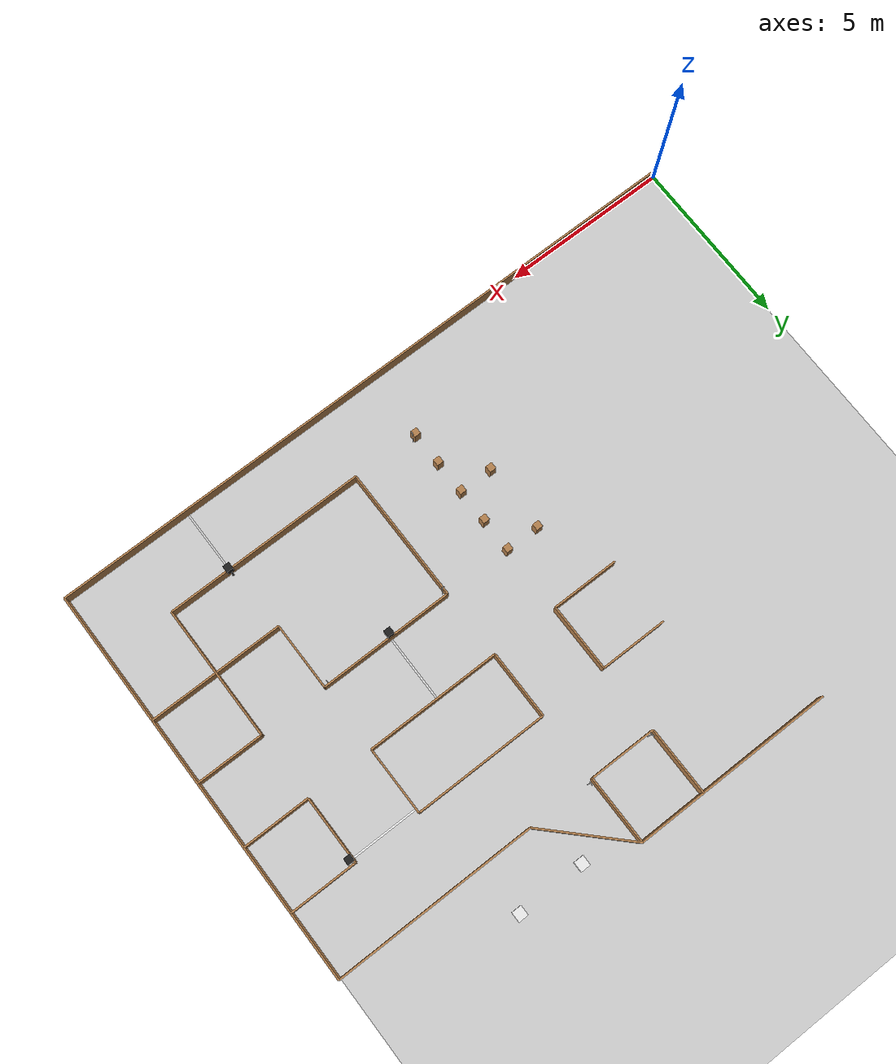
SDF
<sdf version="1.6">
 <world name="default">
  <include><uri>model://cube</uri><name>cube_1</name><pose>15.5 13.5 0 0 0 4.71238898038469</pose></include>
  <include><uri>model://cube</uri><name>cube_0</name><pose>13.5 13.5 0 0 0 4.71238898038469</pose></include>
  <model name="box_72">
   <pose>10.0 2.0 0.25 0 0 0</pose>
   <link name="link">
    <inertial>
     <mass>1</mass>
     <inertia><ixx>0</ixx><ixy>0</ixy><ixz>0</ixz><iyy>0</iyy><iyz>0</iyz><izz>0</izz></inertia>
    </inertial>
    <collision name="collision"><geometry><box><size>0.2 0.2 0.5</size></box></geometry></collision>
    <visual name="visual">
     <geometry><box><size>0.2 0.2 0.5</size></box></geometry>
     <material>
      <script><name>Gazebo/WoodPallet</name><uri>file://media/materials/scripts/gazebo.material</uri></script>
     </material>
    </visual>
   </link>
   <static>1</static>
  </model>
  <model name="box_69">
   <pose>10.0 3.0 0.25 0 0 0</pose>
   <link name="link">
    <inertial>
     <mass>1</mass>
     <inertia><ixx>0</ixx><ixy>0</ixy><ixz>0</ixz><iyy>0</iyy><iyz>0</iyz><izz>0</izz></inertia>
    </inertial>
    <collision name="collision"><geometry><box><size>0.2 0.2 0.5</size></box></geometry></collision>
    <visual name="visual">
     <geometry><box><size>0.2 0.2 0.5</size></box></geometry>
     <material>
      <script><name>Gazebo/WoodPallet</name><uri>file://media/materials/scripts/gazebo.material</uri></script>
     </material>
    </visual>
   </link>
   <static>1</static>
  </model>
  <model name="box_67">
   <pose>10.0 4.0 0.25 0 0 0</pose>
   <link name="link">
    <inertial>
     <mass>1</mass>
     <inertia><ixx>0</ixx><ixy>0</ixy><ixz>0</ixz><iyy>0</iyy><iyz>0</iyz><izz>0</izz></inertia>
    </inertial>
    <collision name="collision"><geometry><box><size>0.2 0.2 0.5</size></box></geometry></collision>
    <visual name="visual">
     <geometry><box><size>0.2 0.2 0.5</size></box></geometry>
     <material>
      <script><name>Gazebo/WoodPallet</name><uri>file://media/materials/scripts/gazebo.material</uri></script>
     </material>
    </visual>
   </link>
   <static>1</static>
  </model>
  <model name="box_66">
   <pose>9.0 4.0 0.25 0 0 0</pose>
   <link name="link">
    <inertial>
     <mass>1</mass>
     <inertia><ixx>0</ixx><ixy>0</ixy><ixz>0</ixz><iyy>0</iyy><iyz>0</iyz><izz>0</izz></inertia>
    </inertial>
    <collision name="collision"><geometry><box><size>0.2 0.2 0.5</size></box></geometry></collision>
    <visual name="visual">
     <geometry><box><size>0.2 0.2 0.5</size></box></geometry>
     <material>
      <script><name>Gazebo/WoodPallet</name><uri>file://media/materials/scripts/gazebo.material</uri></script>
     </material>
    </visual>
   </link>
   <static>1</static>
  </model>
  <model name="box_64">
   <pose>10.0 4.0 0.25 0 0 0</pose>
   <link name="link">
    <inertial>
     <mass>1</mass>
     <inertia><ixx>0</ixx><ixy>0</ixy><ixz>0</ixz><iyy>0</iyy><iyz>0</iyz><izz>0</izz></inertia>
    </inertial>
    <collision name="collision"><geometry><box><size>0.2 0.2 0.5</size></box></geometry></collision>
    <visual name="visual">
     <geometry><box><size>0.2 0.2 0.5</size></box></geometry>
     <material>
      <script><name>Gazebo/WoodPallet</name><uri>file://media/materials/scripts/gazebo.material</uri></script>
     </material>
    </visual>
   </link>
   <static>1</static>
  </model>
  <model name="box_63">
   <pose>9.0 4.0 0.25 0 0 0</pose>
   <link name="link">
    <inertial>
     <mass>1</mass>
     <inertia><ixx>0</ixx><ixy>0</ixy><ixz>0</ixz><iyy>0</iyy><iyz>0</iyz><izz>0</izz></inertia>
    </inertial>
    <collision name="collision"><geometry><box><size>0.2 0.2 0.5</size></box></geometry></collision>
    <visual name="visual">
     <geometry><box><size>0.2 0.2 0.5</size></box></geometry>
     <material>
      <script><name>Gazebo/WoodPallet</name><uri>file://media/materials/scripts/gazebo.material</uri></script>
     </material>
    </visual>
   </link>
   <static>1</static>
  </model>
  <model name="box_61">
   <pose>10.0 5.0 0.25 0 0 0</pose>
   <link name="link">
    <inertial>
     <mass>1</mass>
     <inertia><ixx>0</ixx><ixy>0</ixy><ixz>0</ixz><iyy>0</iyy><iyz>0</iyz><izz>0</izz></inertia>
    </inertial>
    <collision name="collision"><geometry><box><size>0.2 0.2 0.5</size></box></geometry></collision>
    <visual name="visual">
     <geometry><box><size>0.2 0.2 0.5</size></box></geometry>
     <material>
      <script><name>Gazebo/WoodPallet</name><uri>file://media/materials/scripts/gazebo.material</uri></script>
     </material>
    </visual>
   </link>
   <static>1</static>
  </model>
  <model name="box_59">
   <pose>10.0 6.0 0.25 0 0 0</pose>
   <link name="link">
    <inertial>
     <mass>1</mass>
     <inertia><ixx>0</ixx><ixy>0</ixy><ixz>0</ixz><iyy>0</iyy><iyz>0</iyz><izz>0</izz></inertia>
    </inertial>
    <collision name="collision"><geometry><box><size>0.2 0.2 0.5</size></box></geometry></collision>
    <visual name="visual">
     <geometry><box><size>0.2 0.2 0.5</size></box></geometry>
     <material>
      <script><name>Gazebo/WoodPallet</name><uri>file://media/materials/scripts/gazebo.material</uri></script>
     </material>
    </visual>
   </link>
   <static>1</static>
  </model>
  <model name="box_58">
   <pose>9.0 6.0 0.25 0 0 0</pose>
   <link name="link">
    <inertial>
     <mass>1</mass>
     <inertia><ixx>0</ixx><ixy>0</ixy><ixz>0</ixz><iyy>0</iyy><iyz>0</iyz><izz>0</izz></inertia>
    </inertial>
    <collision name="collision"><geometry><box><size>0.2 0.2 0.5</size></box></geometry></collision>
    <visual name="visual">
     <geometry><box><size>0.2 0.2 0.5</size></box></geometry>
     <material>
      <script><name>Gazebo/WoodPallet</name><uri>file://media/materials/scripts/gazebo.material</uri></script>
     </material>
    </visual>
   </link>
   <static>1</static>
  </model>
  <include>
   <uri>model://forward-right-sign</uri>
   <name>sign_5</name>
   <pose>12.14 12.06 0 0 0 1.5707963267948966</pose>
  </include>
  <include>
   <uri>model://brick-sign</uri>
   <name>sign_4</name>
   <pose>10.14 2.0600000000000005 0 0 0 1.5707963267948966</pose>
  </include>
  <include>
   <uri>model://left-sign</uri>
   <name>sign_3</name>
   <pose>15.86 5.9399999999999995 0 0 0 4.71238898038469</pose>
  </include>
  <include>
   <uri>model://right-sign</uri>
   <name>sign_2</name>
   <pose>12.06 5.859999999999999 0 0 0 6.283185307179586</pose>
  </include>
  <include>
   <uri>model://forward-right-sign</uri>
   <name>sign_0</name>
   <pose>10.14 12.06 0 0 0 1.5707963267948966</pose>
  </include>
  <model name="box_40">
   <pose>12.0 13.0 0.25 0 0 -1.5707963267948966</pose>
   <link name="link">
    <inertial>
     <mass>1</mass>
     <inertia><ixx>0</ixx><ixy>0</ixy><ixz>0</ixz><iyy>0</iyy><iyz>0</iyz><izz>0</izz></inertia>
    </inertial>
    <collision name="collision"><geometry><box><size>2.0 0.05 0.5</size></box></geometry></collision>
    <visual name="visual">
     <geometry><box><size>2.0 0.05 0.5</size></box></geometry>
     <material>
      <script><name>Gazebo/WoodPallet</name><uri>file://media/materials/scripts/gazebo.material</uri></script>
     </material>
    </visual>
   </link>
   <static>1</static>
  </model>
  <model name="box_39">
   <pose>11.0 12.0 0.25 0 0 -3.141592653589793</pose>
   <link name="link">
    <inertial>
     <mass>1</mass>
     <inertia><ixx>0</ixx><ixy>0</ixy><ixz>0</ixz><iyy>0</iyy><iyz>0</iyz><izz>0</izz></inertia>
    </inertial>
    <collision name="collision"><geometry><box><size>2.0 0.05 0.5</size></box></geometry></collision>
    <visual name="visual">
     <geometry><box><size>2.0 0.05 0.5</size></box></geometry>
     <material>
      <script><name>Gazebo/WoodPallet</name><uri>file://media/materials/scripts/gazebo.material</uri></script>
     </material>
    </visual>
   </link>
   <static>1</static>
  </model>
  <model name="box_38">
   <pose>10.0 13.0 0.25 0 0 1.5707963267948966</pose>
   <link name="link">
    <inertial>
     <mass>1</mass>
     <inertia><ixx>0</ixx><ixy>0</ixy><ixz>0</ixz><iyy>0</iyy><iyz>0</iyz><izz>0</izz></inertia>
    </inertial>
    <collision name="collision"><geometry><box><size>2.0 0.05 0.5</size></box></geometry></collision>
    <visual name="visual">
     <geometry><box><size>2.0 0.05 0.5</size></box></geometry>
     <material>
      <script><name>Gazebo/WoodPallet</name><uri>file://media/materials/scripts/gazebo.material</uri></script>
     </material>
    </visual>
   </link>
   <static>1</static>
  </model>
  <model name="box_25">
   <pose>9.0 10.0 0.25 0 0 -3.141592653589793</pose>
   <link name="link">
    <inertial>
     <mass>1</mass>
     <inertia><ixx>0</ixx><ixy>0</ixy><ixz>0</ixz><iyy>0</iyy><iyz>0</iyz><izz>0</izz></inertia>
    </inertial>
    <collision name="collision"><geometry><box><size>2.0 0.05 0.5</size></box></geometry></collision>
    <visual name="visual">
     <geometry><box><size>2.0 0.05 0.5</size></box></geometry>
     <material>
      <script><name>Gazebo/WoodPallet</name><uri>file://media/materials/scripts/gazebo.material</uri></script>
     </material>
    </visual>
   </link>
   <static>1</static>
  </model>
  <model name="box_23">
   <pose>9.0 8.0 0.25 0 0 -0.0</pose>
   <link name="link">
    <inertial>
     <mass>1</mass>
     <inertia><ixx>0</ixx><ixy>0</ixy><ixz>0</ixz><iyy>0</iyy><iyz>0</iyz><izz>0</izz></inertia>
    </inertial>
    <collision name="collision"><geometry><box><size>2.0 0.05 0.5</size></box></geometry></collision>
    <visual name="visual">
     <geometry><box><size>2.0 0.05 0.5</size></box></geometry>
     <material>
      <script><name>Gazebo/WoodPallet</name><uri>file://media/materials/scripts/gazebo.material</uri></script>
     </material>
    </visual>
   </link>
   <static>1</static>
  </model>
  <model name="box_22">
   <pose>10.0 9.0 0.25 0 0 1.5707963267948966</pose>
   <link name="link">
    <inertial>
     <mass>1</mass>
     <inertia><ixx>0</ixx><ixy>0</ixy><ixz>0</ixz><iyy>0</iyy><iyz>0</iyz><izz>0</izz></inertia>
    </inertial>
    <collision name="collision"><geometry><box><size>2.0 0.05 0.5</size></box></geometry></collision>
    <visual name="visual">
     <geometry><box><size>2.0 0.05 0.5</size></box></geometry>
     <material>
      <script><name>Gazebo/WoodPallet</name><uri>file://media/materials/scripts/gazebo.material</uri></script>
     </material>
    </visual>
   </link>
   <static>1</static>
  </model>
  <model name="box_21">
   <pose>19.0 8.0 0.25 0 0 -3.141592653589793</pose>
   <link name="link">
    <inertial>
     <mass>1</mass>
     <inertia><ixx>0</ixx><ixy>0</ixy><ixz>0</ixz><iyy>0</iyy><iyz>0</iyz><izz>0</izz></inertia>
    </inertial>
    <collision name="collision"><geometry><box><size>2.0 0.05 0.5</size></box></geometry></collision>
    <visual name="visual">
     <geometry><box><size>2.0 0.05 0.5</size></box></geometry>
     <material>
      <script><name>Gazebo/WoodPallet</name><uri>file://media/materials/scripts/gazebo.material</uri></script>
     </material>
    </visual>
   </link>
   <static>1</static>
  </model>
  <model name="box_20">
   <pose>18.0 9.0 0.25 0 0 1.5707963267948966</pose>
   <link name="link">
    <inertial>
     <mass>1</mass>
     <inertia><ixx>0</ixx><ixy>0</ixy><ixz>0</ixz><iyy>0</iyy><iyz>0</iyz><izz>0</izz></inertia>
    </inertial>
    <collision name="collision"><geometry><box><size>2.0 0.05 0.5</size></box></geometry></collision>
    <visual name="visual">
     <geometry><box><size>2.0 0.05 0.5</size></box></geometry>
     <material>
      <script><name>Gazebo/WoodPallet</name><uri>file://media/materials/scripts/gazebo.material</uri></script>
     </material>
    </visual>
   </link>
   <static>1</static>
  </model>
  <model name="box_19">
   <pose>19.0 10.0 0.25 0 0 -0.0</pose>
   <link name="link">
    <inertial>
     <mass>1</mass>
     <inertia><ixx>0</ixx><ixy>0</ixy><ixz>0</ixz><iyy>0</iyy><iyz>0</iyz><izz>0</izz></inertia>
    </inertial>
    <collision name="collision"><geometry><box><size>2.0 0.05 0.5</size></box></geometry></collision>
    <visual name="visual">
     <geometry><box><size>2.0 0.05 0.5</size></box></geometry>
     <material>
      <script><name>Gazebo/WoodPallet</name><uri>file://media/materials/scripts/gazebo.material</uri></script>
     </material>
    </visual>
   </link>
   <static>1</static>
  </model>
  <model name="box_18">
   <pose>14.0 10.0 0.25 0 0 -0.0</pose>
   <link name="link">
    <inertial>
     <mass>1</mass>
     <inertia><ixx>0</ixx><ixy>0</ixy><ixz>0</ixz><iyy>0</iyy><iyz>0</iyz><izz>0</izz></inertia>
    </inertial>
    <collision name="collision"><geometry><box><size>4.0 0.05 0.5</size></box></geometry></collision>
    <visual name="visual">
     <geometry><box><size>4.0 0.05 0.5</size></box></geometry>
     <material>
      <script><name>Gazebo/WoodPallet</name><uri>file://media/materials/scripts/gazebo.material</uri></script>
     </material>
    </visual>
   </link>
   <static>1</static>
  </model>
  <model name="box_17">
   <pose>16.0 9.0 0.25 0 0 -1.5707963267948966</pose>
   <link name="link">
    <inertial>
     <mass>1</mass>
     <inertia><ixx>0</ixx><ixy>0</ixy><ixz>0</ixz><iyy>0</iyy><iyz>0</iyz><izz>0</izz></inertia>
    </inertial>
    <collision name="collision"><geometry><box><size>2.0 0.05 0.5</size></box></geometry></collision>
    <visual name="visual">
     <geometry><box><size>2.0 0.05 0.5</size></box></geometry>
     <material>
      <script><name>Gazebo/WoodPallet</name><uri>file://media/materials/scripts/gazebo.material</uri></script>
     </material>
    </visual>
   </link>
   <static>1</static>
  </model>
  <model name="box_16">
   <pose>14.0 8.0 0.25 0 0 -3.141592653589793</pose>
   <link name="link">
    <inertial>
     <mass>1</mass>
     <inertia><ixx>0</ixx><ixy>0</ixy><ixz>0</ixz><iyy>0</iyy><iyz>0</iyz><izz>0</izz></inertia>
    </inertial>
    <collision name="collision"><geometry><box><size>4.0 0.05 0.5</size></box></geometry></collision>
    <visual name="visual">
     <geometry><box><size>4.0 0.05 0.5</size></box></geometry>
     <material>
      <script><name>Gazebo/WoodPallet</name><uri>file://media/materials/scripts/gazebo.material</uri></script>
     </material>
    </visual>
   </link>
   <static>1</static>
  </model>
  <model name="box_15">
   <pose>12.0 9.0 0.25 0 0 1.5707963267948966</pose>
   <link name="link">
    <inertial>
     <mass>1</mass>
     <inertia><ixx>0</ixx><ixy>0</ixy><ixz>0</ixz><iyy>0</iyy><iyz>0</iyz><izz>0</izz></inertia>
    </inertial>
    <collision name="collision"><geometry><box><size>2.0 0.05 0.5</size></box></geometry></collision>
    <visual name="visual">
     <geometry><box><size>2.0 0.05 0.5</size></box></geometry>
     <material>
      <script><name>Gazebo/WoodPallet</name><uri>file://media/materials/scripts/gazebo.material</uri></script>
     </material>
    </visual>
   </link>
   <static>1</static>
  </model>
  <model name="box_14">
   <pose>19.0 6.0 0.25 0 0 -3.141592653589793</pose>
   <link name="link">
    <inertial>
     <mass>1</mass>
     <inertia><ixx>0</ixx><ixy>0</ixy><ixz>0</ixz><iyy>0</iyy><iyz>0</iyz><izz>0</izz></inertia>
    </inertial>
    <collision name="collision"><geometry><box><size>2.0 0.05 0.5</size></box></geometry></collision>
    <visual name="visual">
     <geometry><box><size>2.0 0.05 0.5</size></box></geometry>
     <material>
      <script><name>Gazebo/WoodPallet</name><uri>file://media/materials/scripts/gazebo.material</uri></script>
     </material>
    </visual>
   </link>
   <static>1</static>
  </model>
  <model name="box_13">
   <pose>18.0 4.0 0.25 0 0 -1.5707963267948966</pose>
   <link name="link">
    <inertial>
     <mass>1</mass>
     <inertia><ixx>0</ixx><ixy>0</ixy><ixz>0</ixz><iyy>0</iyy><iyz>0</iyz><izz>0</izz></inertia>
    </inertial>
    <collision name="collision"><geometry><box><size>4.0 0.05 0.5</size></box></geometry></collision>
    <visual name="visual">
     <geometry><box><size>4.0 0.05 0.5</size></box></geometry>
     <material>
      <script><name>Gazebo/WoodPallet</name><uri>file://media/materials/scripts/gazebo.material</uri></script>
     </material>
    </visual>
   </link>
   <static>1</static>
  </model>
  <model name="box_12">
   <pose>15.0 2.0 0.25 0 0 -3.141592653589793</pose>
   <link name="link">
    <inertial>
     <mass>1</mass>
     <inertia><ixx>0</ixx><ixy>0</ixy><ixz>0</ixz><iyy>0</iyy><iyz>0</iyz><izz>0</izz></inertia>
    </inertial>
    <collision name="collision"><geometry><box><size>6.0 0.05 0.5</size></box></geometry></collision>
    <visual name="visual">
     <geometry><box><size>6.0 0.05 0.5</size></box></geometry>
     <material>
      <script><name>Gazebo/WoodPallet</name><uri>file://media/materials/scripts/gazebo.material</uri></script>
     </material>
    </visual>
   </link>
   <static>1</static>
  </model>
  <model name="box_11">
   <pose>12.0 4.0 0.25 0 0 1.5707963267948966</pose>
   <link name="link">
    <inertial>
     <mass>1</mass>
     <inertia><ixx>0</ixx><ixy>0</ixy><ixz>0</ixz><iyy>0</iyy><iyz>0</iyz><izz>0</izz></inertia>
    </inertial>
    <collision name="collision"><geometry><box><size>4.0 0.05 0.5</size></box></geometry></collision>
    <visual name="visual">
     <geometry><box><size>4.0 0.05 0.5</size></box></geometry>
     <material>
      <script><name>Gazebo/WoodPallet</name><uri>file://media/materials/scripts/gazebo.material</uri></script>
     </material>
    </visual>
   </link>
   <static>1</static>
  </model>
  <model name="box_10">
   <pose>14.0 6.0 0.25 0 0 -0.0</pose>
   <link name="link">
    <inertial>
     <mass>1</mass>
     <inertia><ixx>0</ixx><ixy>0</ixy><ixz>0</ixz><iyy>0</iyy><iyz>0</iyz><izz>0</izz></inertia>
    </inertial>
    <collision name="collision"><geometry><box><size>4.0 0.05 0.5</size></box></geometry></collision>
    <visual name="visual">
     <geometry><box><size>4.0 0.05 0.5</size></box></geometry>
     <material>
      <script><name>Gazebo/WoodPallet</name><uri>file://media/materials/scripts/gazebo.material</uri></script>
     </material>
    </visual>
   </link>
   <static>1</static>
  </model>
  <model name="box_9">
   <pose>16.0 5.0 0.25 0 0 -1.5707963267948966</pose>
   <link name="link">
    <inertial>
     <mass>1</mass>
     <inertia><ixx>0</ixx><ixy>0</ixy><ixz>0</ixz><iyy>0</iyy><iyz>0</iyz><izz>0</izz></inertia>
    </inertial>
    <collision name="collision"><geometry><box><size>2.0 0.05 0.5</size></box></geometry></collision>
    <visual name="visual">
     <geometry><box><size>2.0 0.05 0.5</size></box></geometry>
     <material>
      <script><name>Gazebo/WoodPallet</name><uri>file://media/materials/scripts/gazebo.material</uri></script>
     </material>
    </visual>
   </link>
   <static>1</static>
  </model>
  <model name="box_8">
   <pose>18.0 4.0 0.25 0 0 -0.0</pose>
   <link name="link">
    <inertial>
     <mass>1</mass>
     <inertia><ixx>0</ixx><ixy>0</ixy><ixz>0</ixz><iyy>0</iyy><iyz>0</iyz><izz>0</izz></inertia>
    </inertial>
    <collision name="collision"><geometry><box><size>4.0 0.05 0.5</size></box></geometry></collision>
    <visual name="visual">
     <geometry><box><size>4.0 0.05 0.5</size></box></geometry>
     <material>
      <script><name>Gazebo/WoodPallet</name><uri>file://media/materials/scripts/gazebo.material</uri></script>
     </material>
    </visual>
   </link>
   <static>1</static>
  </model>
  <model name="box_7">
   <pose>9.0 14.0 0.25 0 0 -0.0</pose>
   <link name="link">
    <inertial>
     <mass>1</mass>
     <inertia><ixx>0</ixx><ixy>0</ixy><ixz>0</ixz><iyy>0</iyy><iyz>0</iyz><izz>0</izz></inertia>
    </inertial>
    <collision name="collision"><geometry><box><size>6.0 0.05 0.5</size></box></geometry></collision>
    <visual name="visual">
     <geometry><box><size>6.0 0.05 0.5</size></box></geometry>
     <material>
      <script><name>Gazebo/WoodPallet</name><uri>file://media/materials/scripts/gazebo.material</uri></script>
     </material>
    </visual>
   </link>
   <static>1</static>
  </model>
  <model name="box_6">
   <pose>13.0 13.0 0.25 0 0 -0.7853981633974483</pose>
   <link name="link">
    <inertial>
     <mass>1</mass>
     <inertia><ixx>0</ixx><ixy>0</ixy><ixz>0</ixz><iyy>0</iyy><iyz>0</iyz><izz>0</izz></inertia>
    </inertial>
    <collision name="collision">
     <geometry><box><size>2.8284271247461903 0.05 0.5</size></box></geometry>
    </collision>
    <visual name="visual">
     <geometry><box><size>2.8284271247461903 0.05 0.5</size></box></geometry>
     <material>
      <script><name>Gazebo/WoodPallet</name><uri>file://media/materials/scripts/gazebo.material</uri></script>
     </material>
    </visual>
   </link>
   <static>1</static>
  </model>
  <model name="box_5">
   <pose>17.0 12.0 0.25 0 0 -0.0</pose>
   <link name="link">
    <inertial>
     <mass>1</mass>
     <inertia><ixx>0</ixx><ixy>0</ixy><ixz>0</ixz><iyy>0</iyy><iyz>0</iyz><izz>0</izz></inertia>
    </inertial>
    <collision name="collision"><geometry><box><size>6.0 0.05 0.5</size></box></geometry></collision>
    <visual name="visual">
     <geometry><box><size>6.0 0.05 0.5</size></box></geometry>
     <material>
      <script><name>Gazebo/WoodPallet</name><uri>file://media/materials/scripts/gazebo.material</uri></script>
     </material>
    </visual>
   </link>
   <static>1</static>
  </model>
  <model name="box_4">
   <pose>20.0 6.0 0.25 0 0 -1.5707963267948966</pose>
   <link name="link">
    <inertial>
     <mass>1</mass>
     <inertia><ixx>0</ixx><ixy>0</ixy><ixz>0</ixz><iyy>0</iyy><iyz>0</iyz><izz>0</izz></inertia>
    </inertial>
    <collision name="collision"><geometry><box><size>12.0 0.05 0.5</size></box></geometry></collision>
    <visual name="visual">
     <geometry><box><size>12.0 0.05 0.5</size></box></geometry>
     <material>
      <script><name>Gazebo/WoodPallet</name><uri>file://media/materials/scripts/gazebo.material</uri></script>
     </material>
    </visual>
   </link>
   <static>1</static>
  </model>
  <model name="box_3">
   <pose>10.0 0.0 0.25 0 0 -3.141592653589793</pose>
   <link name="link">
    <inertial>
     <mass>1</mass>
     <inertia><ixx>0</ixx><ixy>0</ixy><ixz>0</ixz><iyy>0</iyy><iyz>0</iyz><izz>0</izz></inertia>
    </inertial>
    <collision name="collision"><geometry><box><size>20.0 0.05 0.5</size></box></geometry></collision>
    <visual name="visual">
     <geometry><box><size>20.0 0.05 0.5</size></box></geometry>
     <material>
      <script><name>Gazebo/WoodPallet</name><uri>file://media/materials/scripts/gazebo.material</uri></script>
     </material>
    </visual>
   </link>
   <static>1</static>
  </model>
  <model name="tl_line_3">
   <static>1</static>
   <pose>17.0 9.86 0.001 0 0 6.283185307179586</pose>
   <link name="link">
    <collision name="collision">
     <geometry><plane><normal>0 0 1</normal><size>2.0 0.05</size></plane></geometry>
     <surface><friction><ode><mu>100</mu><mu2>50</mu2></ode></friction></surface>
    </collision>
    <visual name="visual">
     <geometry><plane><normal>0 0 1</normal><size>2.0 0.05</size></plane></geometry>
     <material>
      <script><name>Gazebo/White</name><uri>file://media/materials/scripts/gazebo.material</uri></script>
     </material>
    </visual>
   </link>
  </model>
  <include>
   <uri>model://traffic-light</uri>
   <name>traffic_light_2</name>
   <pose>18.06 9.86 0 0 0 6.283185307179586</pose>
  </include>
  <model name="tl_line_2">
   <static>1</static>
   <pose>13.86 7.0 0.001 0 0 4.71238898038469</pose>
   <link name="link">
    <collision name="collision">
     <geometry><plane><normal>0 0 1</normal><size>2.0 0.05</size></plane></geometry>
     <surface><friction><ode><mu>100</mu><mu2>50</mu2></ode></friction></surface>
    </collision>
    <visual name="visual">
     <geometry><plane><normal>0 0 1</normal><size>2.0 0.05</size></plane></geometry>
     <material>
      <script><name>Gazebo/White</name><uri>file://media/materials/scripts/gazebo.material</uri></script>
     </material>
    </visual>
   </link>
  </model>
  <include>
   <uri>model://traffic-light</uri>
   <name>traffic_light_1</name>
   <pose>13.86 5.9399999999999995 0 0 0 4.71238898038469</pose>
  </include>
  <model name="tl_line_1">
   <static>1</static>
   <pose>16.14 1.0 0.001 0 0 1.5707963267948966</pose>
   <link name="link">
    <collision name="collision">
     <geometry><plane><normal>0 0 1</normal><size>2.0 0.05</size></plane></geometry>
     <surface><friction><ode><mu>100</mu><mu2>50</mu2></ode></friction></surface>
    </collision>
    <visual name="visual">
     <geometry><plane><normal>0 0 1</normal><size>2.0 0.05</size></plane></geometry>
     <material>
      <script><name>Gazebo/White</name><uri>file://media/materials/scripts/gazebo.material</uri></script>
     </material>
    </visual>
   </link>
  </model>
  <include>
   <uri>model://traffic-light</uri>
   <name>traffic_light_0</name>
   <pose>16.14 2.0600000000000005 0 0 0 1.5707963267948966</pose>
  </include>
  <include><uri>model://my_ground_plane</uri><pose>10 10 0 0 0 0</pose></include>
 </world>
</sdf>
